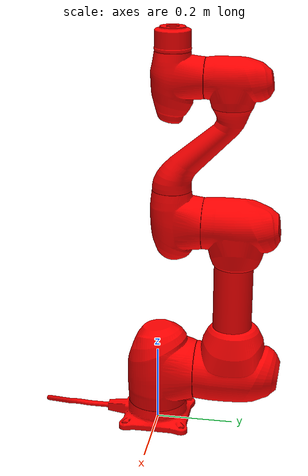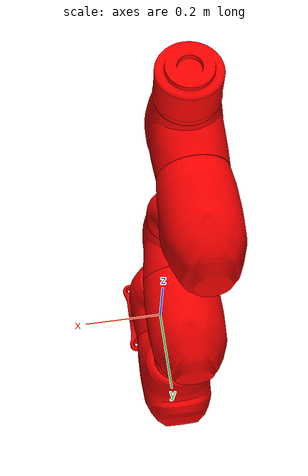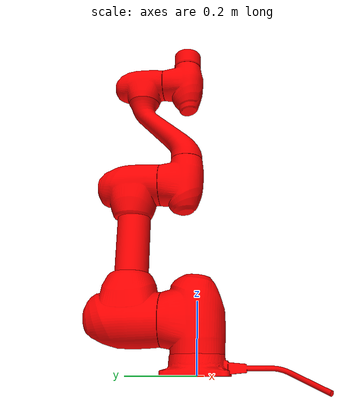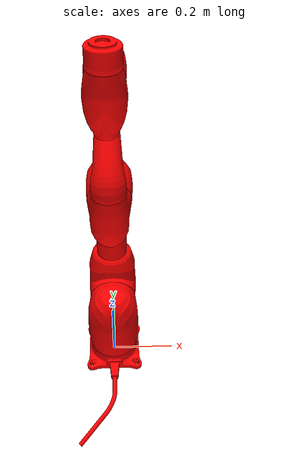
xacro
<?xml version="1.0"?>
<robot xmlns:xacro="http://www.ros.org/wiki/xacro" name="m1509">

  <!-- Args -->
  <xacro:arg name="mode"                default="virtual"/>
  <xacro:arg name="color"               default="white"/>
  <xacro:arg name="namespace"           default=""/>

  <!-- gripper control argument -->
  <xacro:arg name="gripper"             default="none"/>         <!-- none | robotique -->
  <xacro:arg name="gripper_prefix"      default=""/>             <!-- ex) dsr01_ -->
  <xacro:arg name="gripper_parent_link" default="link_6"/>

  <xacro:arg name="use_gazebo"          default="false"/>
  <xacro:arg name="use_mujoco"          default="false"/>
  <xacro:arg name="mujoco_model"        default=""/>
  <xacro:arg name="headless"            default="false"/>
  <xacro:arg name="host"                default=""/>
  <xacro:arg name="port"                default=""/>
  <xacro:arg name="rt_host"             default=""/>
  <xacro:arg name="rt_thread_policy"  default=""/>
  <xacro:arg name="rt_thread_priority"  default=""/>
  <xacro:arg name="mode"                default=""/>
  <xacro:arg name="model"               default=""/>
  <xacro:arg name="update_rate"         default=""/>
  <xacro:arg name="simple"               default="false"/>

  <!-- Local properties -->
  <xacro:property name="cr"             value="$(arg color)"/>
  <xacro:property name="gr"             value="$(arg gripper)"/>
  <xacro:property name="gz"             value="$(arg use_gazebo)"/>
  <xacro:property name="mj"             value="$(arg use_mujoco)"/>
  <xacro:property name="host"           value="$(arg host)"/>
  <xacro:property name="rt_host"        value="$(arg rt_host)"/>
  <xacro:property name="rt_thread_policy" value="$(arg rt_thread_policy)"/>
  <xacro:property name="rt_thread_priority" value="$(arg rt_thread_priority)"/>
  <xacro:property name="port"           value="$(arg port)"/>
  <xacro:property name="mode"           value="$(arg mode)"/>
  <xacro:property name="model"          value="$(arg model)"/>
  <xacro:property name="update_rate"    value="$(arg update_rate)"/>

  <!-- Visual -->
  <xacro:if value="${cr == 'white'}">
    <xacro:include filename="$(find dsr_description2)/xacro/macro.m1509.white.xacro"/>
  </xacro:if>
  <xacro:if value="${cr == 'blue'}">
    <xacro:include filename="$(find dsr_description2)/xacro/macro.m1509.blue.xacro"/>
  </xacro:if>

  <xacro:m1509 namespace="$(arg namespace)" simple="$(arg simple)"/>

  <xacro:unless value="$(arg simple)">
  <!-- World -->
  <link name="world"/>
  <joint name="world_fixed" type="fixed">
    <origin xyz="0 0 0" rpy="0 0 0"/>
    <parent link="world"/>
    <child  link="base_link"/>
  </joint>

  <!-- Gazebo -->
  <xacro:if value="${gz}">
    <xacro:include filename="$(find dsr_description2)/ros2_control/m1509.gz_ros2_control.xacro"/>
    <xacro:m1509_gz_ros2_control
      namespace="$(arg namespace)"
      update_rate="${update_rate}"
    />
  </xacro:if>
  <!-- MuJoCo -->
  <xacro:if value="${mj and not gz}">
    <xacro:include filename="$(find dsr_description2)/ros2_control/m1509.mj_ros2_control.xacro"/>
    <xacro:m1509_mj_ros2_control
      namespace="$(arg namespace)"
      gripper="$(arg gripper)"
      mujoco_model="$(arg mujoco_model)"
      headless="$(arg headless)"
      update_rate="${update_rate}"
    />
  </xacro:if>
  <!-- Default ros2_control -->
  <xacro:unless value="${gz or mj}">
    <xacro:include filename="$(find dsr_description2)/ros2_control/m1509.ros2_control.xacro" />
    <xacro:m1509_ros2_control
      name="m1509"
      host="${host}"
      rt_host="${rt_host}"
      rt_thread_policy="${rt_thread_policy}"
      rt_thread_priority="${rt_thread_priority}"
      port="${port}"
      mode="${mode}"
      model="${model}"
      update_rate="${update_rate}"
    />
  </xacro:unless>

  <xacro:if value="${gr == 'robotiq_2f85'}">

    <xacro:include filename="$(find dsr_description2)/gripper/robotiq.xacro"/>
    <xacro:robotiq_85
      parent="$(arg gripper_parent_link)"
      prefix="$(arg gripper_prefix)"/>

    <xacro:include filename="$(find dsr_description2)/gripper/robotiq.ros2_control.xacro"/>
      <xacro:robotiq_gripper_system
      mode="$(arg mode)"
      joint_name="$(arg gripper_prefix)robotiq_85_left_knuckle_joint"
      system_name="$(arg gripper_prefix)robotiq_gripper_system"
      pos_min="0.0"
      pos_max="0.8"
      init_pos="0.0"
      speed_mult="1.0"
      force_mult="0.5"
      max_speed="0.150"
      max_force="235.0"
      mock_sensor_commands="true" />

  </xacro:if>

  </xacro:unless>
</robot>

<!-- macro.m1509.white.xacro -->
<robot name="m1509" xmlns:xacro="http://www.ros.org/wiki/xacro">
	<xacro:include filename="$(find dsr_description2)/config/macro.gazebo.xacro" />
	<xacro:include filename="$(find dsr_description2)/config/macro.transmission.xacro" />
	<xacro:include filename="$(find dsr_description2)/config/macro.materials.xacro" />
	<xacro:macro name="m1509" params="namespace simple:=false">
		<xacro:dsr_materials />
		<link name="base_link">
			<inertial>
				<mass value="4.12"/>
				<origin xyz="-3.4e-05   -0.004815    0.048482"/>
				<inertia ixx="0.016805" ixy="-5.5036e-06" ixz="2.7445e-06" iyy="0.016834"
					iyz="-0.00051575"
					izz="0.022647"/>
			</inertial>
			<collision>
				<origin rpy="0 0 0" xyz="0 0 0" />
				<geometry>
					<mesh filename="package://dsr_description2/meshes/m1509_collision/MF1509_0_0.dae" scale="0.001 0.001 0.001" />
				</geometry>
			</collision>
			<visual>
				<origin rpy="0 0 0" xyz="0 0 0" />
				<geometry>
					<mesh filename="package://dsr_description2/meshes/m1509_white/MF1509_0_0.dae" scale="0.001 0.001 0.001" />
				</geometry>
			</visual>
		</link>
		<!-- joint 1 -->
		<joint name="joint_1" type="revolute">
			<parent link="base_link" />
			<child link="link_1" />
			<origin rpy="0 0 0" xyz="0 0 0.1525" />
			<axis xyz="0 0 1" />
			<limit effort="346" lower="-6.2832" upper="6.2832" velocity="2.618"/>
			<dynamics friction="0" />
		</joint>
		<link name="link_1">
			<inertial>
				<mass value="7.8"/>
				<origin xyz="0.000119      0.0428   -0.006382"/>
				<inertia ixx="0.047481" ixy="4.2706e-05" ixz="-5.3678e-05" iyy="0.030766"
					iyz="-0.0019938"
					izz="0.047461"/>
			</inertial>
            <collision>
				<origin rpy="0 0 0" xyz="0 0 0" />
				<geometry>
					<mesh filename="package://dsr_description2/meshes/m1509_collision/MF1509_1_0.dae" scale="0.001 0.001 0.001" />
				</geometry>
			</collision>
			<visual>
				<origin rpy="0 0 0" xyz="0 0 0" />
				<geometry>
					<mesh filename="package://dsr_description2/meshes/m1509_white/MF1509_1_0.dae" scale="0.001 0.001 0.001" />
				</geometry>
			</visual>
		</link>
		<!-- joint2 -->
		<joint name="joint_2" type="revolute">
			<parent link="link_1" />
			<child link="link_2" />
			<origin rpy="0 -1.571 -1.571" xyz="0 0.0345 0" />
			<axis xyz="0 0 1" />
			<limit effort="346" lower="-6.2832" upper="6.2832" velocity="2.618"/>
			<dynamics friction="0" />
		</joint>
		<link name="link_2">
			<inertial>
				<mass value="10.06"/>
				<origin xyz="0.17059    -5.8e-05     0.15734"/>
				<inertia ixx="0.037059" ixy="-0.00023967" ixz="-0.0049921" iyy="0.3701" iyz="4.2201e-05"
					izz="0.36866"/>
			</inertial>
            <collision>
				<origin rpy="0 0 0" xyz="0 0 0" />
				<geometry>
					<mesh filename="package://dsr_description2/meshes/m1509_collision/MF1509_2_0.dae" scale="0.001 0.001 0.001" />
				</geometry>
			</collision>
			<visual>
				<origin rpy="0 0 0" xyz="0 0 0" />
				<geometry>
					<mesh filename="package://dsr_description2/meshes/m1509_white/MF1509_2_0.dae" scale="0.001 0.001 0.001" />
				</geometry>
			</visual>
			<collision>
				<origin rpy="0 0 0" xyz="0 0 0" />
				<geometry>
					<mesh filename="package://dsr_description2/meshes/m1509_collision/MF1509_2_1.dae" scale="0.001 0.001 0.001" />
				</geometry>
			</collision>
			<visual>
				<origin rpy="0 0 0" xyz="0 0 0" />
				<geometry>
					<mesh filename="package://dsr_description2/meshes/m1509_white/MF1509_2_1.dae" scale="0.001 0.001 0.001" />
				</geometry>
			</visual>
			<collision>
				<origin rpy="0 0 0" xyz="0 0 0" />
				<geometry>
					<mesh filename="package://dsr_description2/meshes/m1509_collision/MF1509_2_2.dae" scale="0.001 0.001 0.001" />
				</geometry>
			</collision>
			<visual>
				<origin rpy="0 0 0" xyz="0 0 0" />
				<geometry>
					<mesh filename="package://dsr_description2/meshes/m1509_white/MF1509_2_2.dae" scale="0.001 0.001 0.001" />
				</geometry>
			</visual>
		</link>
		<!-- joint3 -->
		<joint name="joint_3" type="revolute">
			<parent link="link_2" />
			<child link="link_3" />
			<origin rpy="0 0 1.571" xyz="0.411 0 0" />
			<axis xyz="0 0 1" />
			<limit effort="163" lower="-2.618" upper="2.618" velocity="3.1416"/>
			<dynamics friction="0" />
		</joint>
		<link name="link_3">
			<inertial>
				<mass value="3.68"/>
				<origin xyz="-1.5e-05    -0.00671    0.044632"/>
				<inertia ixx="0.019496" ixy="1.0207e-05" ixz="-4.6541e-06" iyy="0.015303"
					iyz="-0.00099648"
					izz="0.011095"/>
			</inertial>
			<collision>
				<origin rpy="0 0 0" xyz="0 0 0" />
				<geometry>
					<mesh filename="package://dsr_description2/meshes/m1509_collision/MF1509_3_0.dae" scale="0.001 0.001 0.001" />
				</geometry>
			</collision>
			<visual>
				<origin rpy="0 0 0" xyz="0 0 0" />
				<geometry>
					<mesh filename="package://dsr_description2/meshes/m1509_white/MF1509_3_0.dae" scale="0.001 0.001 0.001" />
				</geometry>
			</visual>
		</link>
		<!-- joint4 -->
		<joint name="joint_4" type="revolute">
			<parent link="link_3" />
			<child link="link_4" />
			<origin rpy="1.571 0 0" xyz="0 -0.368 0" />
			<axis xyz="0 0 1" />
			<limit effort="50" lower="-6.2832" upper="6.2832" velocity="3.927"/>
			<dynamics friction="0" />
		</joint>
		<link name="link_4">
			<inertial>
				<mass value="3.59"/>
				<origin xyz="3.9e-05     0.09731     -0.1096"/>
				<inertia ixx="0.082012" ixy="-5.6458e-06" ixz="-8.1419e-06" iyy="0.06358"
					iyz="-0.028995"
					izz="0.025281"/>
			</inertial>
            <collision>
				<origin rpy="0 0 0" xyz="0 0 0" />
				<geometry>
					<mesh filename="package://dsr_description2/meshes/m1509_collision/MF1509_4_0.dae" scale="0.001 0.001 0.001" />
				</geometry>
			</collision>
			<visual>
				<origin rpy="0 0 0" xyz="0 0 0" />
				<geometry>
					<mesh filename="package://dsr_description2/meshes/m1509_white/MF1509_4_0.dae" scale="0.001 0.001 0.001" />
				</geometry>
			</visual>
			<collision>
				<origin rpy="0 0 0" xyz="0 0 0" />
				<geometry>
					<mesh filename="package://dsr_description2/meshes/m1509_collision/MF1509_4_1.dae" scale="0.001 0.001 0.001" />
				</geometry>
			</collision>
			<visual>
				<origin rpy="0 0 0" xyz="0 0 0" />
				<geometry>
					<mesh filename="package://dsr_description2/meshes/m1509_white/MF1509_4_1.dae" scale="0.001 0.001 0.001" />
				</geometry>
			</visual>
		</link>
		<!-- joint5 -->
		<joint name="joint_5" type="revolute">
			<parent link="link_4" />
			<child link="link_5" />
			<origin rpy="-1.571 0 0" xyz="0 0 0" />
			<axis xyz="0 0 1" />
			<limit effort="50" lower="-6.2832" upper="6.2832" velocity="3.927"/>
			<dynamics friction="0" />
		</joint>
		<link name="link_5">
			<inertial>
				<mass value="2.83"/>
				<origin xyz="-6.9e-05    0.003827    0.032006"/>
				<inertia ixx="0.016871" ixy="1.9694e-05" ixz="2.9684e-06" iyy="0.013767"
					iyz="0.00044631"
					izz="0.0097685"/>
			</inertial>
            <collision>
				<origin rpy="0 0 0" xyz="0 0 0" />
				<geometry>
					<mesh filename="package://dsr_description2/meshes/m1509_collision/MF1509_5_0.dae" scale="0.001 0.001 0.001" />
				</geometry>
			</collision>
			<visual>
				<origin rpy="0 0 0" xyz="0 0 0" />
				<geometry>
					<mesh filename="package://dsr_description2/meshes/m1509_white/MF1509_5_0.dae" scale="0.001 0.001 0.001" />
				</geometry>
			</visual>
		</link>
		<!-- joint6 -->
		<joint name="joint_6" type="revolute">
			<parent link="link_5" />
			<child link="link_6" />
			<origin rpy="1.571 0 0" xyz="0 -0.121 0" />
			<axis xyz="0 0 1" />
			<limit effort="50" lower="-6.2832" upper="6.2832" velocity="3.927"/>
			<dynamics friction="0" />
		</joint>
		<link name="link_6">
			<inertial>
				<mass value="1.16"/>
				<origin xyz="-3.2e-05       8e-06     -0.0539"/>
				<inertia ixx="0.0048523" ixy="2.7941e-06" ixz="4.9172e-06" iyy="0.0047546"
					iyz="3.1535e-06"
					izz="0.0071373"/>
			</inertial>
			<collision>
				<origin rpy="0 0 0" xyz="0 0 0" />
				<geometry>
					<mesh filename="package://dsr_description2/meshes/m1509_collision/MF1509_6_0.dae" scale="0.001 0.001 0.001" />
				</geometry>
			</collision>
			<visual>
				<origin rpy="0 0 0" xyz="0 0 0" />
				<geometry>
					<mesh filename="package://dsr_description2/meshes/m1509_white/MF1509_6_0.dae" scale="0.001 0.001 0.001" />
				</geometry>
			</visual>
		</link>
		<xacro:unless value="${simple}">
		<xacro:dsr_transmission />
		<xacro:dsr_gazebo namespace="${namespace}" />
	</xacro:unless>
	</xacro:macro>
</robot>

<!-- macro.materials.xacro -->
<robot name="dsr_materials" xmlns:xacro="http://www.ros.org/wiki/xacro">
	<xacro:macro name="dsr_materials">
		<material name="black">
			<color rgba="0.0 0.0 0.0 1.0" />
		</material>
		<material name="white">
			<color rgba="1.0 1.0 1.0 1.0" />
		</material>
		<material name="orange">
			<color rgba="1.0 0.4 0.0 1.0" />
		</material>
		<material name="dr_gray">
			<color rgba="0.490 0.490 0.486 1.0" />
		</material>
		<material name="dr_white">
			<color rgba="0.941 0.941 0.941 1.0" />
		</material>
		<material name="dr_blue">
			<color rgba="0 0 0.15 1" />
		</material>
	</xacro:macro>
</robot>
